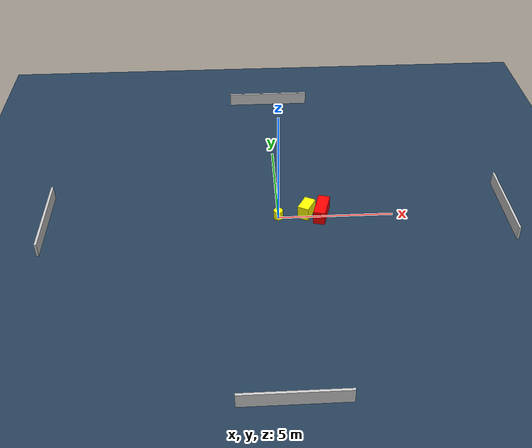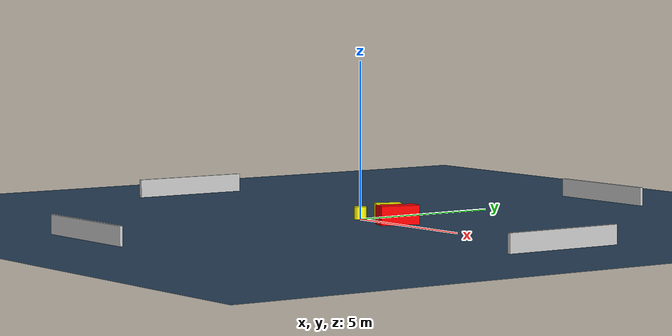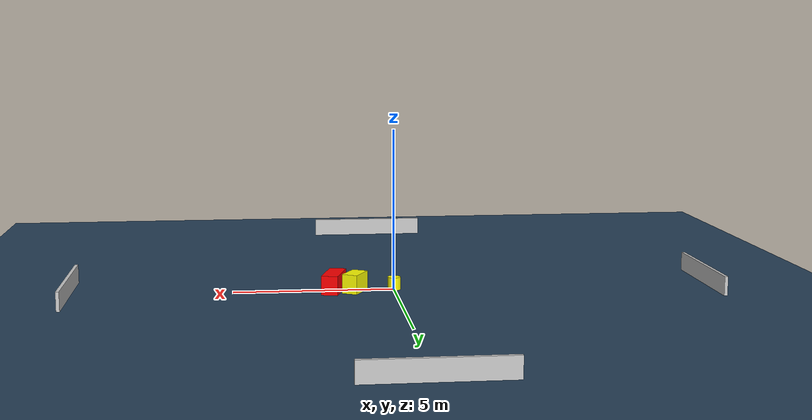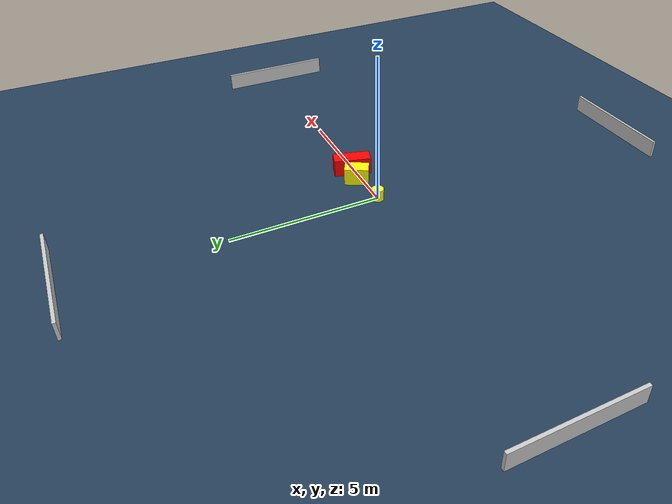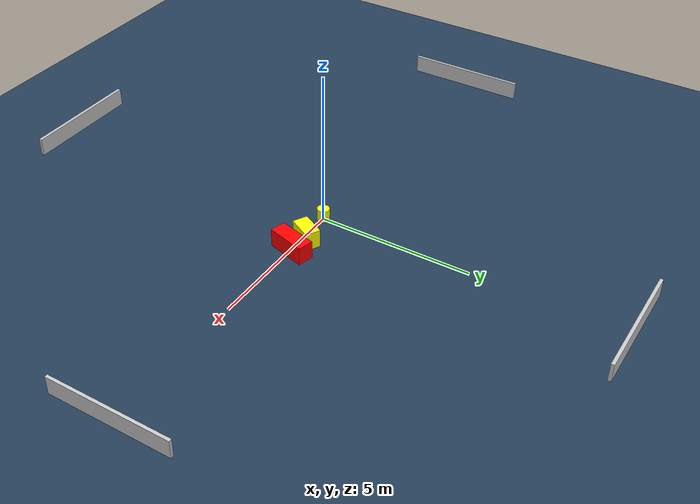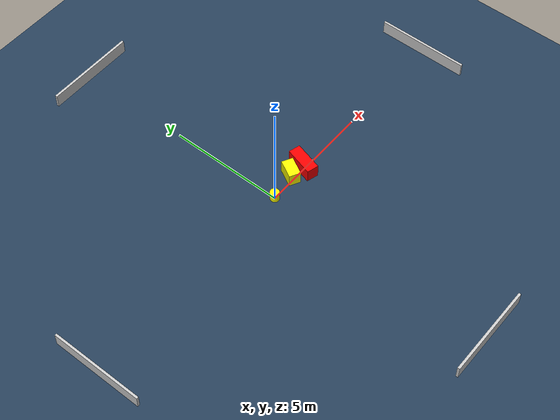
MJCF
<?xml version="1.0" ?>
<mujoco model="generated_environment">
  <option timestep="0.01" integrator="RK4" cone="elliptic"/>
  <default>
    <geom density="1"/>
  </default>
  <asset>
    <texture builtin="gradient" height="3072" name="skybox" rgb1="0.3 0.5 0.7" rgb2="0 0 0" type="skybox" width="512"/>
    <texture builtin="checker" height="300" name="groundplane" rgb1="0.2 0.3 0.4" rgb2="0.1 0.2 0.3" type="2d" width="300"/>
    <material name="groundplane" reflectance="0.2" texrepeat="5 5" texture="groundplane"/>
  </asset>
  <worldbody>
    <light dir="0 0 -1" directional="true" pos="0 0 1.5"/>
    <geom condim="3" friction="0.5 0.005 0.001" material="groundplane" name="floor" pos="0 0 0" size="0 0 0.05" type="plane"/>
    <body name="walls">
      <geom name="wall_1" condim="4" pos="-10.0 0.0 0.3" rgba="0.800000011920929 0.800000011920929 0.800000011920929 1.0" size="0.05 2.0 0.3" type="box"/>
      <geom name="wall_2" condim="4" pos="10.0 0.0 0.3" rgba="0.800000011920929 0.800000011920929 0.800000011920929 1.0" size="0.05 2.0 0.3" type="box"/>
      <geom name="wall_3" condim="4" pos="0.0 -10.0 0.3" rgba="0.800000011920929 0.800000011920929 0.800000011920929 1.0" size="2.0 0.05 0.3" type="box"/>
      <geom name="wall_4" condim="4" pos="0.0 10.0 0.3" rgba="0.800000011920929 0.800000011920929 0.800000011920929 1.0" size="2.0 0.05 0.3" type="box"/>
    </body>
    <body name="robot">
      <joint name="joint_x" type="slide" pos="0 0 0" axis="1 0 0"/>
      <joint name="joint_y" type="slide" pos="0 0 0" axis="0 1 0"/>
      <geom name="robot" type="cylinder" pos="0.0 0.0 0.2" size="0.2 0.2 0.0" mass="5.0" friction="1.0 0.005 0.0001" condim="4" rgba="1.0 1.0 0.0 1.0"/>
    </body>
    <body name="obstacle_1_movable">
      <geom name="obstacle_1_movable" condim="4" pos="1.2437707413521757 0.17926484192949912 0.3" euler="0 0 61.58218189966117" friction="0.0 0.005 0.001" rgba="1.0 1.0 0.0 1.0" size="0.4081042730046157 0.24750259409709385 0.3" type="box" mass="0.1"/>
      <joint type="free"/>
    </body>
    <body name="obstacle_2_static">
      <geom name="obstacle_2_static" condim="4" pos="1.890776029893861 0.06534752612362785 0.3" euler="0 0 254.2847767995573" friction="0.0 0.005 0.001" rgba="1.0 0.0 0.0 1.0" size="0.6328468477148781 0.2560402089437036 0.3" type="box"/>
    </body>
  </worldbody>
  <actuator>
    <motor name="actuator_x" joint="joint_x" gear="1" ctrlrange="-1 1"/>
    <motor name="actuator_y" joint="joint_y" gear="1" ctrlrange="-1 1"/>
  </actuator>
</mujoco>
